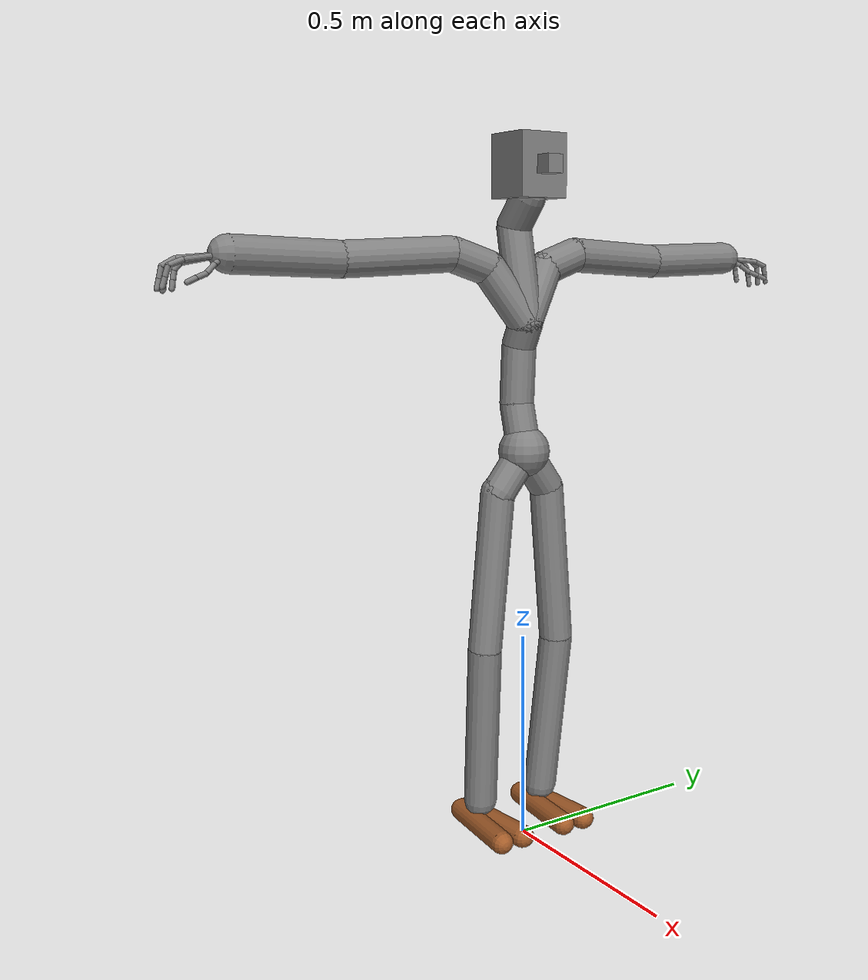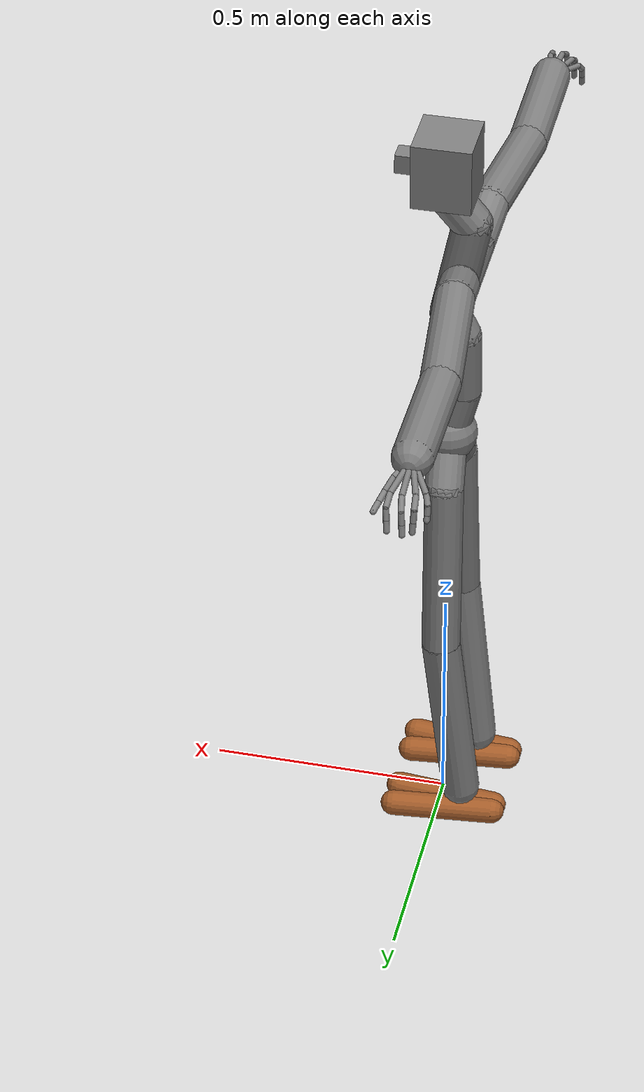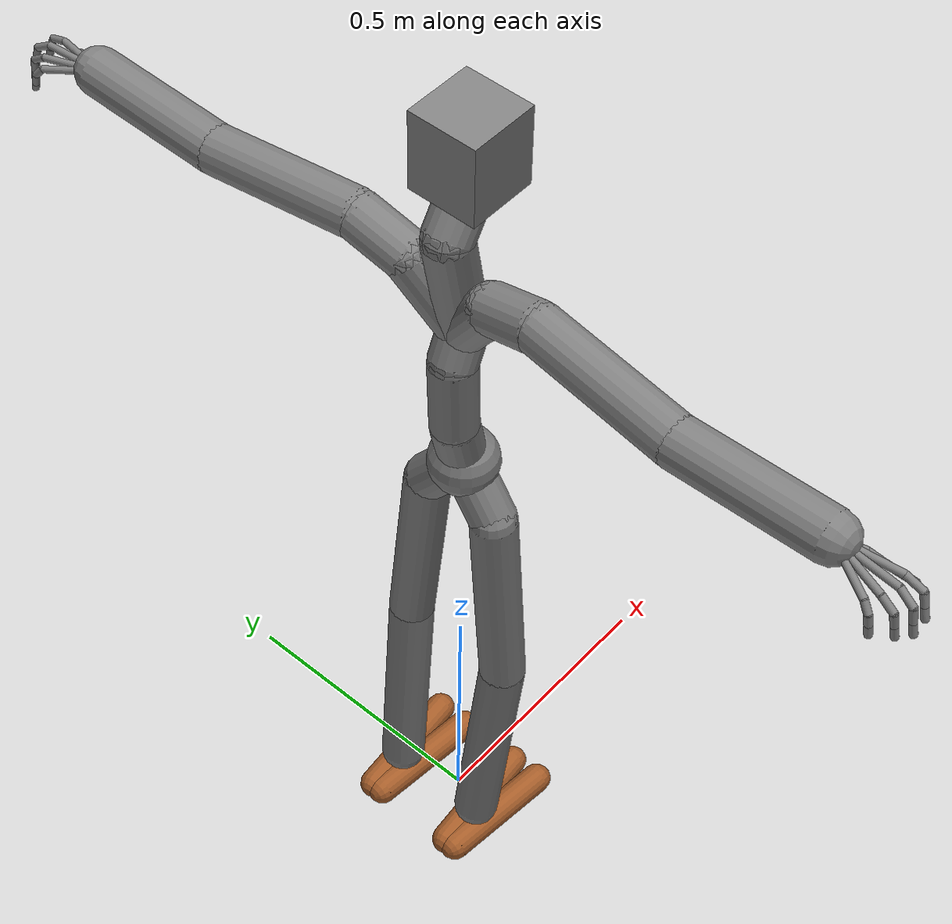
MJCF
<mujoco model="smpl-rig">
    <!--
            Robot Intelligence Lab
            SMPL-X Robot Mini model

            @ Contact us : taemoon-jeong (motor_moon94@korea.ac.kr)
    -->
    <statistic extent="2" center="0 0 1"/>
    <compiler  inertiafromgeom="true" angle="radian" autolimits="true"/>

    <default>
        <site size=".04" group="3"/>
        <motor ctrlrange="-1. 1." ctrllimited="true"/>
        <default class="body">
            <!-- geoms -->
            <geom type="capsule" condim="1" solimp=".9 .99 .003" solref=".015 1" material="matgeom" density="800" />
            <default class="thigh">
                <geom size=".06"/>
            </default>
            <default class="shin">
                <geom fromto="0 0 0 0 0 -.3"  size=".049"/>
            </default>
            <default class="foot">
                <geom size=".027"/>
                <default class="foot1">
                    <geom fromto="-.07 -.01 -0.05 .14 -.03 -0.05"/>
                </default>
                <default class="foot2">
                    <geom fromto="-.07 .01 -0.05 .14  .03 -0.05"/>
                </default>
            </default>

            <!-- joints -->
            <joint type="hinge" damping="1" stiffness="5" armature=".01" limited="true" solimplimit="0 .99 .01"/>
            <default class="joint_big">
                <joint damping="5" stiffness="10"/>
                <default class="hip_x">
                <joint/>
                </default>
                <default class="hip_z">
                <joint/>
                </default>
                <default class="hip_y">
                <joint axis="0 1 0"/>
                </default>
                <default class="joint_big_stiff">
                <joint stiffness="20"/>
                </default>
            </default>
            <default class="knee">
                <joint pos="0 0 .02"/>
            </default>
            <default class="ankle">
                <joint/>
                <default class="ankle_y">
                <joint pos="0 0 .08" axis="0 1 0" stiffness="6"/>
                </default>
                <default class="ankle_x">
                <joint pos="0 0 .04" stiffness="3"/>
                </default>
            </default>
            <default class="shoulder">
                <joint />
            </default>
            <default class="elbow">
                <joint stiffness="0"/>
            </default>

            <!-- tracking site -->
            <default class="tracking_site">
                <site type="sphere" size="0.027" rgba="1 0 0 1" group="3"/>
            </default>
        </default>
    </default>

    <visual>
        <rgba haze="0.15 0.25 0.35 1"/>
        <quality shadowsize="2048"/>
        <global offwidth="800" offheight="800"/>
    </visual>

    <asset>
        <texture name="texgeom" type="cube" builtin="flat" mark="cross" width="127" height="1278"
            rgb1="0.8 0.6 0.4" rgb2="0.8 0.6 0.4" markrgb="1 1 1" random="0.01"/>
        <material name="matgeom" texture="texgeom" texuniform="true" rgba="0.8 0.6 0.4 1.0"/>
    </asset>

    <worldbody>
        <body name="base" pos="0 0 0.95">
            <freejoint name="base"/>
            <geom name="base" type="sphere" pos="0 0 0" size="0.06"/>
            <body name="root" pos="0 0 0" euler="0 0 0" >
                <joint name="root1" type="hinge" pos="0 0 0" axis="1 0 0" range="-1.5 1.5" armature="0.02" class="joint_big"/>
                <joint name="root2" type="hinge" pos="0 0 0" axis="0 1 0" range="-1.5 1.5" armature="0.02" class="joint_big"/>
                <joint name="root3" type="hinge" pos="0 0 0" axis="0 0 1" range="-1.5 1.5" armature="0.02" class="joint_big_stiff"/>
                <geom name="base2spine1" type="capsule" fromto="0 0 0 -0.02669631317257881 -0.00253287423402071 0.10896323621273041"  size="0.04"/>
                <site name="base2spine1" type="capsule" fromto="0 0 0 -0.02669631317257881 -0.00253287423402071 0.10896323621273041"  size="0.04" />

                <body name="spine1" pos="-0.02669631317257881 -0.00253287423402071 0.10896323621273041" euler="0 0 0" >
                    <geom name="spine2spine" type="capsule" fromto="0 0 0 0.001092471182 0.005487040151 0.1351804286"  size="0.04"/>

                    <body name="spine2" pos="0.001092471182 0.005487040151 0.1351804286" euler="0 0 0">
                        <geom name="spine2spine2" type="capsule" fromto="0 0 0 0.02542456612 0.001456997823 0.05292221904"  size="0.04"/>
                        <site name="spine2spine2" type="capsule" fromto="0 0 0 0.02542456612 0.001456997823 0.05292221904"  size="0.04" />
                        <joint name="spine1" type="hinge" pos="0 0 0" axis="1 0 0" range="-1.5 1.5" armature="0.02" class="joint_big" />
                        <joint name="spine2" type="hinge" pos="0 0 0" axis="0 1 0" range="-1.5 1.5" armature="0.02" class="joint_big" />
                        <joint name="spine3" type="hinge" pos="0 0 0" axis="0 0 1" range="-1.5 1.5" armature="0.02" class="joint_big" />

                        <body name="spine3" pos="0.02542456612 0.0 0.05292221904" euler="0 0 0">
                            <geom name="spine2spine3" type="capsule" fromto="0 0 0 -0.04285703227 -0.002778389724 0.2138703763"  size="0.04"/>
                            <site name="spine2spine3" type="capsule" fromto="0 0 0 -0.04285703227 -0.002778389724 0.2138703763"  size="0.04" />

                            <body name="neck" pos="-0.04285703227 -0.002778389724 0.2138703763" euler="0 0 0">
                                <geom name="neck2head" type="capsule" fromto="0 0 0 0.05134896934 0.00515184016 0.0649696588"  size="0.04" />

                                <body name="head" pos="0.05134896934 0.00515184016 0.06496965885" euler="0 0 0">
                                    <site name="head" type="box" pos="0 0  0.06496965885" size="0.06 0.06 0.07" />
                                    <geom name="head" type="box" pos="0 0  0.06496965885" size="0.06 0.06 0.07" />
                                    <geom name="nose" type="box" pos="0.05 0  0.06496965885" size="0.05 0.02 0.02" />
                                    <joint name="head1" type="hinge" pos="0 0 0" axis="1 0 0" range="-1.57 1.57" armature="0.02" />
                                    <joint name="head2" type="hinge" pos="0 0 0" axis="0 1 0" range="-1.57 1.57" armature="0.02" />
                                    <joint name="head3" type="hinge" pos="0 0 0" axis="0 0 1" range="-1.57 1.57" armature="0.02" />
                                </body>
                            </body>

                            <geom name="spine2lcollar" type="capsule" fromto="0 0 0 -0.03408960626 0.07884474564 0.1217493117"  size="0.04" />
                            <body name="left_collar" pos="-0.03408960626 0.07884474564 0.1217493117" euler="0 0 0">
                                <geom name="lcollar2lshoulder" type="capsule" fromto="0 0 0 -0.008868150413 0.09097691625 0.03046888113"  size="0.04" />

                                <body name="left_shoulder" pos="-0.008868150413 0.09097691625 0.03046888113" euler="0 0 0">
                                    <geom name="lshoulder2lelbow" type="capsule" fromto="0 0 0 -0.02745642886 0.2596122175 -0.01277205348"  size="0.04" />
                                    <joint name="l_shoulder1" type="hinge" pos="0 0 0" axis="1 0 0" range="-3.141592 3.141592" armature="0.0068" class="shoulder" />
                                    <joint name="l_shoulder2" type="hinge" pos="0 0 0" axis="0 0 1" range="-3.141592 3.141592" armature="0.0051" class="shoulder" />
                                    <joint name="l_shoulder3" type="hinge" pos="0 0 0" axis="0 1 0" range="-3.141592 3.141592" armature="0.0051" class="shoulder" />

                                    <body name="left_elbow" pos="-0.02745642886 0.2596122175 -0.01277205348" euler="0 0 0">
                                        <geom name="lelbow2lwrist" type="capsule" fromto="0 0 0 -0.001170918345 0.2492336035 0.008986026049"  size="0.04" />
                                        <joint name="l_elbow" type="hinge" pos="0 0 0" axis="0 0 1" range="-2.61666666667 -0.01" armature="0.0028" class="elbow" />
                                        <site name="tracking[lhand]" class="tracking_site" pos="-0.001170918345 0.2492336035 0.008986026049" />
                                        <body name="left_wrist" pos="-0.001170918345 0.2492336035 0.008986026049" euler="0 0 0">
                                            <geom name="lwrist2lindex1" type="capsule" fromto="0 0 0 0.01935114339 0.1019018292 -0.008688151836"  size="0.006" />
                                            <geom name="lwrist2lmiddle1" type="capsule" fromto="0 0 0 -0.00398080796 0.1093975306 -0.006327688694"  size="0.006" />
                                            <geom name="lwrist2lpinky1" type="capsule" fromto="0 0 0 -0.04374960065 0.08404684067 -0.0145393312"  size="0.006" />
                                            <geom name="lwrist2lring1" type="capsule" fromto="0 0 0 -0.02734463662 0.09744417667 -0.009267628193"  size="0.006" />
                                            <geom name="lwrist2lthumb1" type="capsule" fromto="0 0 0 0.02561088279 0.0406357646 -0.01797673106"  size="0.006" />

                                            <joint name="l_wrist1" type="hinge" pos="0 0 0" axis="0 1 0" range="-3.141592 3.141592" damping="5" stiffness="0" armature="0.02" />
                                            <joint name="l_wrist2" type="hinge" pos="0 0 0" axis="0 0 1" range="-3.141592 3.141592" damping="5" stiffness="0" armature="0.02" />
                                            <joint name="l_wrist3" type="hinge" pos="0 0 0" axis="1 0 0" range="-3.141592 3.141592" damping="5" stiffness="0" armature="0.02" />

                                            <body name="left_index1" pos="0.01935114339 0.1019018292 -0.008688151836" euler="0 0 0">
                                                <geom name="lindex1-lindex2" type="capsule" fromto="0 0 0 0.001150548458 0.0301489234 -0.01115390658"  size="0.006" />

                                                <body name="left_index2" pos="0.001150548458 0.0301489234 -0.01115390658" euler="0 0 0">
                                                    <geom name="lindex2-lindex3" type="capsule" fromto="0 0 0 -0.00243325904 0.006504237652 -0.02157706022"  size="0.006" />

                                                    <body name="left_index3" pos="-0.00243325904 0.006504237652 -0.02157706022" euler="0 0 0">
                                                        <!-- temporary geom value for finger tip -->
                                                        <geom name="lindex3-lindextip" type="capsule" fromto="0 0 0 -0.002 0.006 -0.02"  size="0.006" />
                                                        <body name="left_index4" pos="-0.002 0.006 -0.02" euler="0 0 0"/>
                                                    </body>
                                                </body>
                                            </body>
                                            <body name="left_middle1" pos="-0.00398080796 0.1093975306 -0.006327688694" euler="0 0 0">
                                                <geom name="lmiddle1-lmiddle2" type="capsule" fromto="0 0 0 -0.004641152918 0.02647173405 -0.01521787047"  size="0.006" />

                                                <body name="left_middle2" pos="-0.004641152918 0.02647173405 -0.01521787047" euler="0 0 0">
                                                    <geom name="lmiddle2-lmiddle3" type="capsule" fromto="0 0 0 -0.001911483705 0.005021989346 -0.02334663272"  size="0.006" />

                                                    <body name="left_middle3" pos="-0.001911483705 0.005021989346 -0.02334663272" euler="0 0 0">
                                                        <geom name="lmiddl3-lmiddletip" type="capsule" fromto="0 0 0 -0.0019 0.005 -0.02"  size="0.006" />
                                                        <body name="left_middle4" pos="-0.0019 0.005 -0.02" euler="0 0 0"/>
                                                    </body>
                                                </body>
                                            </body>
                                            <body name="left_ring1" pos="-0.02734463662 0.09744417667 -0.009267628193" euler="0 0 0">
                                                <geom name="lring1-lring2" type="capsule" fromto="0 0 0 -0.001894921064 0.02356153727 -0.01605704427"  size="0.006" />

                                                <body name="left_ring2" pos="-0.001894921064 0.02356153727 -0.01605704427" euler="0 0 0">
                                                    <geom name="lring2-lring3" type="capsule" fromto="0 0 0 8.14124942e-4 0.004257023335 -0.0235479176"  size="0.006" />

                                                    <body name="left_ring3" pos="8.14124942e-4 0.004257023335 -0.0235479176" euler="0 0 0">
                                                        <geom name="lring3-lringtip" type="capsule" fromto="0 0 0 8.1e-4 0.004 -0.02"  size="0.006" />
                                                        <body name="left_ring4" pos="8.1e-4 0.004 -0.02" euler="0 0 0"/>
                                                    </body>
                                                </body>
                                            </body>
                                            <body name="left_pinky1" pos="-0.04374960065 0.08404684067 -0.0145393312" euler="0 0 0">
                                                <geom name="lpinky1-lpinky2" type="capsule" fromto="0 0 0 -0.005374751985 0.01212376356 -0.01444780827"  size="0.006" />

                                                <body name="left_pinky2" pos="-0.005374751985 0.01212376356 -0.01444780827" euler="0 0 0">
                                                    <geom name="lpinky2-lpinky3" type="capsule" fromto="0 0 0 1.66594982e-4 0.003798186779 -0.01885265112"  size="0.006" />

                                                    <body name="left_pinky3" pos="1.66594982e-4 0.003798186779 -0.01885265112" euler="0 0 0">
                                                        <geom name="lpinky3-lpinkytip" type="capsule" fromto="0 0 0 1.6e-4 0.003 -0.01"  size="0.006" />
                                                        <body name="left_pinky4" pos="1.6e-4 0.003 -0.01" euler="0 0 0"/>
                                                    </body>
                                                </body>
                                            </body>

                                            <body name="left_thumb1" pos="0.02561088279 0.0406357646 -0.01797673106" euler="0 0 0">
                                                <geom name="lthumb1-lthumb2" type="capsule" fromto="0 0 0 0.01162331179 0.02163672447 -0.01763927937"  size="0.006" />

                                                <body name="left_thumb2" pos="0.01162331179 0.02163672447 -0.01763927937" euler="0 0 0">
                                                    <geom name="lthumb2-lthumb3" type="capsule" fromto="0 0 0 0.006547933444 0.02400177717 -0.008356153965"  size="0.006" />

                                                    <body name="left_thumb3" pos="0.006547933444 0.02400177717 -0.008356153965" euler="0 0 0">
                                                        <geom name="lthumb3-lthumbtip" type="capsule" fromto="0 0 0 0.006 0.02 -0.008"  size="0.006" />
                                                        <body name="left_thumb4" pos="0.006 0.02 -0.008" euler="0 0 0"/>
                                                    </body>
                                                </body>
                                            </body>
                                        </body>
                                    </body>
                                </body>
                            </body>

                            <geom name="spine2rcollar" type="capsule" fromto="0 0 0 -0.03408960626 -0.07884474564 0.1217493117"  size="0.04" />
                            <body name="right_collar" pos="-0.03408960626 -0.07884474564 0.1217493117" euler="0 0 0">
                                <geom name="rcollar2rshoulder" type="capsule" fromto="0 0 0 -0.008868150413 -0.09097691625 0.03046888113"  size="0.04" />

                                <body name="right_shoulder" pos="-0.008868150413 -0.09097691625 0.03046888113" euler="0 0 0">
                                    <geom name="rshoulder2relbow" type="capsule" fromto="0 0 0 -0.02745642886 -0.2596122175 -0.01277205348"  size="0.04" />
                                    <joint name="r_shoulder1" type="hinge" pos="0 0 0" axis="1 0 0" range="-3.141592 3.141592" armature="0.0068" class="shoulder" />
                                    <joint name="r_shoulder2" type="hinge" pos="0 0 0" axis="0 0 1" range="-3.141592 3.141592" armature="0.0051" class="shoulder" />
                                    <joint name="r_shoulder3" type="hinge" pos="0 0 0" axis="0 1 0" range="-3.141592 3.141592" armature="0.0051" class="shoulder" />

                                    <body name="right_elbow" pos="-0.02745642886 -0.2596122175 -0.01277205348" euler="0 0 0">
                                        <geom name="relbow2rwrist" type="capsule" fromto="0 0 0 -0.001170918345 -0.2492336035 0.008986026049"  size="0.04" />
                                        <joint name="r_elbow" type="hinge" pos="0 0 0" axis="0 0 1" range="0.01 2.61666666667" armature="0.0028" class="elbow" />
                                        <site name="tracking[rhand]" class="tracking_site" pos="-0.001170918345 -0.2492336035 0.008986026049" />
                                        <body name="right_wrist" pos="-0.001170918345 -0.2492336035 0.008986026049" euler="0 0 0">
                                            <geom name="rwrist2rindex1" type="capsule" fromto="0 0 0 0.0195999369 -0.09988051653 -0.0117828548"  size="0.006" />
                                            <geom name="rwrist2rmiddle1" type="capsule" fromto="0 0 0 -0.003733821213 -0.1073763967 -0.009421944618"  size="0.006" />
                                            <geom name="rwrist2rpinky1" type="capsule" fromto="0 0 0 -0.04350293428 -0.08202672005 -0.01763445139"  size="0.006" />
                                            <geom name="rwrist2rring1" type="capsule" fromto="0 0 0 -0.02709873021 -0.09542346001 -0.01236194372"  size="0.006" />
                                            <geom name="rwrist2rthumb1" type="capsule" fromto="0 0 0 0.02586134896 -0.03861314058 -0.02107441425"  size="0.006" />

                                            <joint name="r_wrist1" type="hinge" pos="0 0 0" axis="0 1 0" range="-3.141592 3.141592" damping="5" stiffness="0" armature="0.02" />
                                            <joint name="r_wrist2" type="hinge" pos="0 0 0" axis="0 0 1" range="-3.141592 3.141592" damping="5" stiffness="0" armature="0.02" />
                                            <joint name="r_wrist3" type="hinge" pos="0 0 0" axis="1 0 0" range="-3.141592 3.141592" damping="5" stiffness="0" armature="0.02" />

                                            <body name="right_index1" pos="0.0195999369 -0.09988051653 -0.0117828548" euler="0 0 0">
                                                <geom name="rindex1-rindex2" type="capsule" fromto="0 0 0 0.001150920987 -0.03014850616 -0.01115420461"  size="0.006" />

                                                <body name="right_index2" pos="0.001150920987 -0.03014850616 -0.01115420461" euler="0 0 0">
                                                    <geom name="rindex2-rindex3" type="capsule" fromto="0 0 0 -0.002432338893 -0.006504833698 -0.02157700062"  size="0.006" />

                                                    <body name="right_index3" pos="-0.002432338893 -0.006504833698 -0.02157700062" euler="0 0 0">
                                                        <geom name="rindex3-rindextip" type="capsule" fromto="0 0 0 -0.002 -0.006 -0.02"  size="0.006" />
                                                        <body name="right_index4" pos="-0.002 -0.006 -0.02" euler="0 0 0"/>
                                                    </body>

                                                </body>
                                            </body>

                                            <body name="right_middle1" pos="-0.003733821213 -0.1073763967 -0.009421944618" euler="0 0 0">
                                                <geom name="rmiddle1-rmiddle2" type="capsule" fromto="0 0 0 -0.004641346633 -0.02647179365 -0.01521787047"  size="0.006" />

                                                <body name="right_middle2" pos="-0.004641346633 -0.02647179365 -0.01521787047" euler="0 0 0">
                                                    <geom name="rmiddle2-rmiddle3" type="capsule" fromto="0 0 0 -0.001911155879 -0.005021512508 -0.02334678173"  size="0.006" />

                                                    <body name="right_middle3" pos="-0.001911155879 -0.005021512508 -0.02334678173" euler="0 0 0">
                                                        <geom name="rmiddle3-rmiddletip" type="capsule" fromto="0 0 0 -0.001 -0.005 -0.02"  size="0.006" />
                                                        <body name="right_middle4" pos="-0.001 -0.005 -0.02" euler="0 0 0"/>
                                                    </body>
                                                </body>
                                            </body>

                                            <body name="right_ring1" pos="-0.02709873021 -0.09542346001 -0.01236194372" euler="0 0 0">
                                                <geom name="rring1-rring2" type="capsule" fromto="0 0 0 -0.001894876361 -0.02356100082 -0.01605695486"  size="0.006" />

                                                <body name="right_ring2" pos="-0.001894876361 -0.02356100082 -0.01605695486" euler="0 0 0">
                                                    <geom name="rring2-rring3" type="capsule" fromto="0 0 0 8.15756619e-4 -0.004256904125 -0.02354767919"  size="0.006" />

                                                    <body name="right_ring3" pos="8.15756619e-4 -0.004256904125 -0.02354767919" euler="0 0 0">
                                                        <geom name="rring3-rringtip" type="capsule" fromto="0 0 0 8.1e-4 -0.004 -0.02"  size="0.006" />
                                                        <body name="right_ring4" pos="8.1e-4 -0.004 -0.02" euler="0 0 0"/>
                                                    </body>
                                                </body>
                                            </body>

                                            <body name="right_pinky1" pos="-0.04350293428 -0.08202672005 -0.01763445139" euler="0 0 0">
                                                <geom name="rpinky1-rpinky2" type="capsule" fromto="0 0 0 -0.005374066532 -0.01212316751 -0.01444762945"  size="0.006" />

                                                <body name="right_pinky2" pos="-0.005374066532 -0.01212316751 -0.01444762945" euler="0 0 0">
                                                    <geom name="rpinky2-rpinky3" type="capsule" fromto="0 0 0 1.67131424e-4 -0.00379806757 -0.01885226369"  size="0.006" />

                                                    <body name="right_pinky3" pos="1.67131424e-4 -0.00379806757 -0.01885226369" euler="0 0 0">
                                                        <geom name="rpinky3-rpinkytip" type="capsule" fromto="0 0 0 1.6e-4 -0.003 -0.018"  size="0.006" />
                                                        <body name="right_pinky4" pos="1.6e-4 -0.003 -0.018" euler="0 0 0"/>
                                                    </body>
                                                </body>
                                            </body>

                                            <body name="right_thumb1" pos="0.02586134896 -0.03861314058 -0.02107441425" euler="0 0 0">
                                                <geom name="rthumb1-rthumb2" type="capsule" fromto="0 0 0 0.01162325218 -0.02163636684 -0.01763868332"  size="0.006" />

                                                <body name="right_thumb2" pos="0.01162325218 -0.02163636684 -0.01763868332" euler="0 0 0">
                                                    <geom name="rthumb2-rthumb3" type="capsule" fromto="0 0 0 0.006546743214 -0.02400374413 -0.008353203535"  size="0.006" />

                                                    <body name="right_thumb3" pos="0.006546743214 -0.02400374413 -0.008353203535" euler="0 0 0">
                                                        <geom name="rthumb3-rthumbtip" type="capsule" fromto="0 0 0 0.006 -0.02 -0.008"  size="0.006" />
                                                        <body name="right_thumb4" pos="0.006 -0.02 -0.008" euler="0 0 0"/>
                                                    </body>
                                                </body>
                                            </body>
                                        </body>
                                    </body>
                                </body>
                            </body>
                        </body>
                    </body>
                </body>
            </body>
            <site name="tracking[pelvis]" class="tracking_site" pos="0 0 0.075" size=".05" />
            <geom name="base2lpelvis" type="capsule" fromto="0 0 0 -0.006815334782004356 0.06951973587274551 -0.09140622615814209"  size="0.04" />
            <geom name="base2rpelvis" type="capsule" fromto="0 0 0 -0.004319818690419197 -0.06767047941684723 -0.09052169322967529"  size="0.04" />
            <site name="pelvis_site" pos="0 0 0" size="0.01"/>

            <body name="left_pelvis" pos="-0.006815334782004356 0.06951973587274551 -0.09140622615814209" euler="0 0 0">
                <geom name="lpelvis2lknee" type="capsule" fromto="0 0 0 -0.004495806992 0.03427654505 -0.3751985729"  size="0.04" />
                <site name="lpelvis2lknee" type="capsule" fromto="0 0 0 -0.004495806992 0.03427654505 -0.3751985729"  size="0.04" />
                <joint name="l_pelvis1" type="hinge" pos="0 0 0" axis="1 0 0" range="-0.3 0.3" armature="0.01" class="hip_x"/>
                <joint name="l_pelvis2" type="hinge" pos="0 0 0" axis="0 1 0" range="-1.5 0.3" armature="0.01" class="hip_y"/>
                <joint name="l_pelvis3" type="hinge" pos="0 0 0" axis="0 0 1" range="-0.5 0.3" armature="0.01" class="hip_z"/>
                <body name="left_knee" pos="-0.004495806992 0.03427654505 -0.3751985729" euler="0 0 0">
                    <geom name="lknee2lankle" type="capsule" fromto="0 0 0 -0.04369332828 -0.01359570026 -0.3979604542"  size="0.04" />
                    <site name="lknee2lankle" type="capsule" fromto="0 0 0 -0.04369332828 -0.01359570026 -0.3979604542"  size="0.04" />
                    <joint name="l_knee" type="hinge" pos="0 0 0" axis="0 1 0" range="0.0175 2.0944" armature="0.0060" class="knee"/>
                    <joint name="l_knee2" type="hinge" pos="0 0 0" axis="1 0 0" range="0.0175 2.0944" armature="0.0060" class="knee"/>
                    <joint name="l_knee3" type="hinge" pos="0 0 0" axis="0 0 1" range="0.0175 2.0944" armature="0.0060" class="knee"/>
                    <body name="left_ankle" pos="-0.04369332828 -0.01359570026 -0.3979604542" euler="0 0 0">
                        <site name="lankle" type="box" pos="0 0 -0.025" size="0.03 0.03 0.025" />
                        <geom name="foot1_left" class="foot1"/>
                        <geom name="foot2_left" class="foot2"/>

                        <site name="foot_left" pos=".05 -.03 -0.05" type="sphere" rgba="0 1 0 1"  size=".027"/>
                        <site name="sp0" pos="-.07 0 -0.05" type="sphere" size=".027"/>
                        <site name="sp1" pos=".14 0 -0.05" type="sphere" size=".027"/>
                        <joint name="l_ankle1" type="hinge" pos="0 0 0" axis="0 1 0" range="-0.3 0.3"  armature="0.0008" class="ankle_y"/>
                        <joint name="l_ankle2" type="hinge" pos="0 0 0" axis="1 0 0" range="-0.3 0.3" armature="0.0006" class="ankle_x"/>
                        <joint name="l_ankle3" type="hinge" pos="0 0 0" axis="0 0 1" range="-0.3 0.3" armature="0.0006" />
                    </body>
                </body>
            </body>

            <body name="right_pelvis" pos="-0.006815334782004356 -0.06951973587274551 -0.09140622615814209" euler="0 0 0">
                <geom name="rpelvis2rknee" type="capsule" fromto="0 0 0 -0.004495806992 -0.03427654505 -0.3751985729"  size="0.04" />
                <site name="rpelvis2rknee" type="capsule" fromto="0 0 0 -0.004495806992 -0.03427654505 -0.3751985729"  size="0.04" />
                <joint name="r_pelvis1" type="hinge" pos="0 0 0" axis="1 0 0" range="-0.3 0.3" armature="0.01" class="hip_x"/>
                <joint name="r_pelvis2" type="hinge" pos="0 0 0" axis="0 1 0" range="-1.5 0.3" armature="0.01" class="hip_y"/>
                <joint name="r_pelvis3" type="hinge" pos="0 0 0" axis="0 0 1" range="-0.5 0.3" armature="0.01" class="hip_z"/>
                <body name="right_knee" pos="-0.004495806992 -0.03427654505 -0.3751985729" euler="0 0 0" >
                    <geom name="rknee2rankle" type="capsule" fromto="0 0 0 -0.04369332828 0.01359570026 -0.3979604542"  size="0.04" />
                    <site name="rknee2rankle" type="capsule" fromto="0 0 0 -0.04369332828 0.01359570026 -0.3979604542"  size="0.04" />
                    <joint name="r_knee" type="hinge" pos="0 0 0" axis="0 1 0" range="0.0175 2.0944" armature="0.0060" class="knee"/>
                    <joint name="r_knee2" type="hinge" pos="0 0 0" axis="1 0 0" range="0.0175 2.0944" armature="0.0060" class="knee"/>
                    <joint name="r_knee3" type="hinge" pos="0 0 0" axis="0 0 1" range="0.0175 2.0944" armature="0.0060" class="knee"/>
                    <body name="right_ankle" pos="-0.04369332828 0.01359570026 -0.3979604542" euler="0 0 0">
                        <site name="rankle" type="box" pos="0 0 -0.025" size="0.03 0.03 0.025" />
                        <geom name="foot1_right" class="foot1"/>
                        <geom name="foot2_right" class="foot2"/>

                        <site name="foot_right" pos=".05 .03 -0.05" type="sphere" size=".027" rgba="0 1 0 1" />
                        <site name="sp2" pos="-.07 0 -0.05" type="sphere" size=".027"/>
                        <site name="sp3" pos=".14 0 -0.05" type="sphere" size=".027"/>
                        <joint name="r_ankle1" type="hinge" pos="0 0 0" axis="0 1 0" range="-0.3 0.3" armature="0.0008" class="ankle_y"/>
                        <joint name="r_ankle2" type="hinge" pos="0 0 0" axis="1 0 0" range="-0.3 0.3" armature="0.0006" class="ankle_x"/>
                        <joint name="r_ankle3" type="hinge" pos="0 0 0" axis="0 0 1" range="-0.3 0.3" armature="0.0006" />
                    </body>
                </body>
            </body>
        </body>
    </worldbody>

    <actuator>
        <motor name="root1"       gear="40" joint="root1" />
        <motor name="root2"       gear="40" joint="root2" />
        <motor name="root3"       gear="40" joint="root3" />
        <motor name="spine1"       gear="40" joint="spine1" />
        <motor name="spine2"       gear="40" joint="spine2" />
        <motor name="spine3"       gear="40" joint="spine3" />
        <motor name="head1"       gear="20" joint="head1" />
        <motor name="head2"       gear="20" joint="head2" />
        <motor name="head3"       gear="20" joint="head3" />

        <motor name="l_shoulder1"       gear="20" joint="l_shoulder1" />
        <motor name="l_shoulder2"       gear="20" joint="l_shoulder2" />
        <motor name="l_shoulder3"       gear="20" joint="l_shoulder3" />
        <motor name="l_elbow"       gear="40" joint="l_elbow" />
        <motor name="l_wrist1"       gear="20" joint="l_wrist1" />
        <motor name="l_wrist2"       gear="20" joint="l_wrist2" />
        <motor name="l_wrist3"       gear="20" joint="l_wrist3" />

        <motor name="r_shoulder1"       gear="20" joint="r_shoulder1" />
        <motor name="r_shoulder2"       gear="20" joint="r_shoulder2" />
        <motor name="r_shoulder3"       gear="20" joint="r_shoulder3" />
        <motor name="r_elbow"       gear="40" joint="r_elbow" />
        <motor name="r_wrist1"       gear="20" joint="r_wrist1" />
        <motor name="r_wrist2"       gear="20" joint="r_wrist2" />
        <motor name="r_wrist3"       gear="20" joint="r_wrist3" />

        <motor name="l_pelvis1"       gear="40" joint="l_pelvis1" />
        <motor name="l_pelvis2"       gear="40" joint="l_pelvis2" />
        <motor name="l_pelvis3"       gear="40" joint="l_pelvis3" />
        <motor name="l_knee"       gear="100" joint="l_knee" />
        <motor name="l_knee2"       gear="100" joint="l_knee2" />
        <motor name="l_knee3"       gear="100" joint="l_knee3" />
        <motor name="l_ankle1"       gear="20" joint="l_ankle1" />
        <motor name="l_ankle2"       gear="20" joint="l_ankle2" />
        <motor name="l_ankle3"       gear="20" joint="l_ankle3" />

        <motor name="r_pelvis1"       gear="40" joint="r_pelvis1" />
        <motor name="r_pelvis2"       gear="40" joint="r_pelvis2" />
        <motor name="r_pelvis3"       gear="40" joint="r_pelvis3" />
        <motor name="r_knee"       gear="100" joint="r_knee" />
        <motor name="r_knee2"       gear="100" joint="r_knee2" />
        <motor name="r_knee3"       gear="100" joint="r_knee3" />
        <motor name="r_ankle1"       gear="20" joint="r_ankle1" />
        <motor name="r_ankle2"       gear="20" joint="r_ankle2" />
        <motor name="r_ankle3"       gear="20" joint="r_ankle3" />
    </actuator>

    <!-- exclude -->
    <contact>
        <exclude body1="neck" body2="right_shoulder"/>
        <exclude body1="neck" body2="right_collar"/>
        <exclude body1="spine3" body2="right_shoulder"/>
        <exclude body1="spine3" body2="right_collar"/>
        <exclude body1="right_shoulder" body2="right_elbow"/>
        <exclude body1="right_elbow" body2="right_wrist"/>

        <exclude body1="neck" body2="spine3"/>
        <exclude body1="spine2" body2="spine3"/>
        <exclude body1="spine1" body2="spine2"/>
        <exclude body1="spine1" body2="spine3"/>
        <exclude body1="neck" body2="spine2"/>

        <exclude body1="neck" body2="left_shoulder"/>
        <exclude body1="neck" body2="left_collar"/>
        <exclude body1="spine3" body2="left_shoulder"/>
        <exclude body1="spine3" body2="left_collar"/>
        <exclude body1="left_shoulder" body2="left_elbow"/>
        <exclude body1="left_elbow" body2="left_wrist"/>

        <exclude body1="neck" body2="spine3"/>
        <exclude body1="spine1" body2="root"/>
        <exclude body1="root" body2="base"/>

        <exclude body1="base" body2="right_pelvis"/>
        <exclude body1="root" body2="right_pelvis"/>
        <exclude body1="right_pelvis" body2="right_knee"/>
        <exclude body1="right_knee" body2="right_ankle"/>

        <exclude body1="base" body2="left_pelvis"/>
        <exclude body1="root" body2="left_pelvis"/>
        <exclude body1="left_pelvis" body2="left_knee"/>
        <exclude body1="left_knee" body2="left_ankle"/>
    </contact>

</mujoco>
